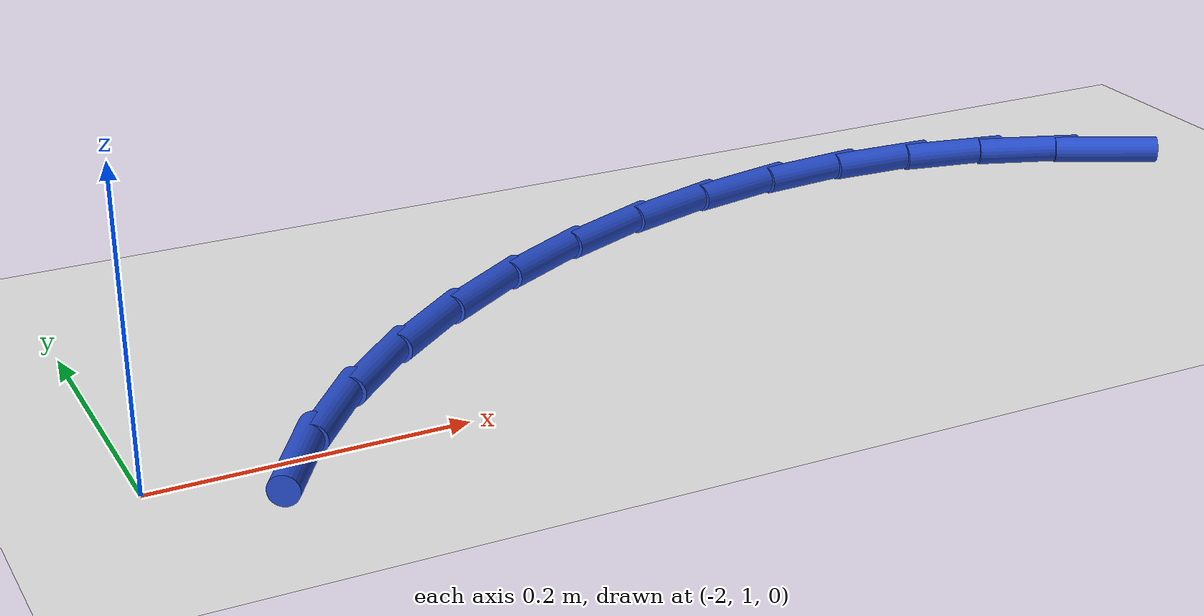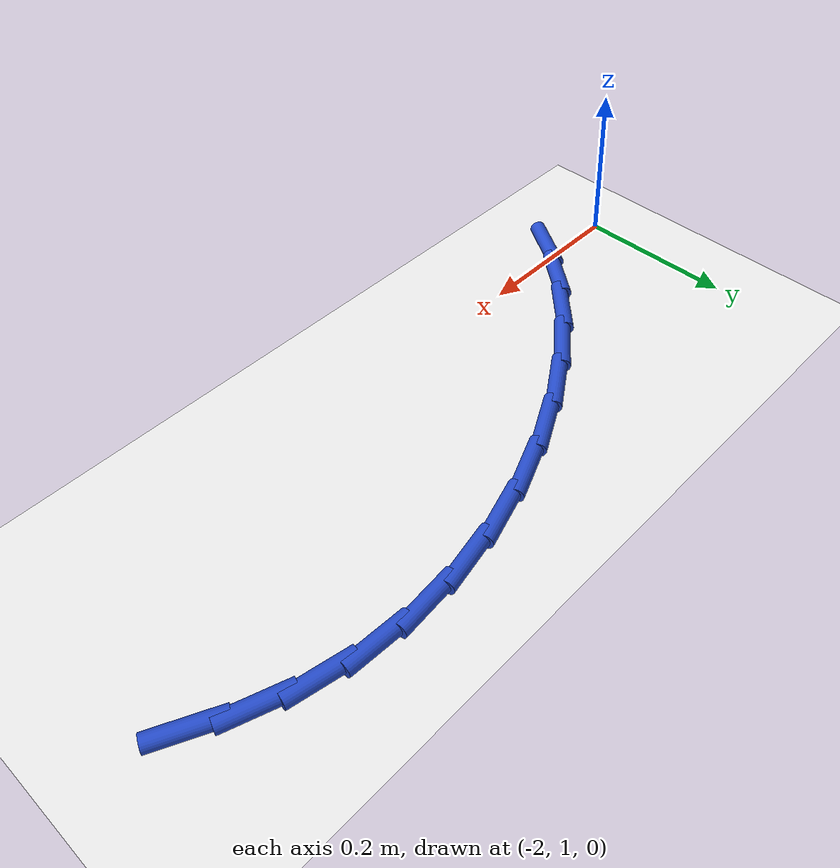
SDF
<sdf version="1.6">
 <world name="default">
  <model name="ground_plane">
   <static>1</static>
   <link name="link">
    <collision name="collision">
     <geometry><plane><normal>0 0 1</normal><size>100 100</size></plane></geometry>
     <surface><friction><ode><mu>100</mu><mu2>50</mu2></ode></friction></surface>
    </collision>
    <visual name="visual">
     <cast_shadows>0</cast_shadows>
     <geometry><plane><normal>0 0 1</normal><size>100 100</size></plane></geometry>
     <material>
      <script><uri>file://media/materials/scripts/gazebo.material</uri><name>Gazebo/WhiteGlow</name></script>
     </material>
    </visual>
   </link>
  </model>
  <model name="line">
   <link name="link_28">
    <pose>-1.1749943977846955 1.1941002527146445 0.01 0 1.57 -0.47391740135177374</pose>
    <collision name="collision">
     <geometry><cylinder><radius>0.01</radius><length>0.08</length></cylinder></geometry>
    </collision>
    <visual name="visual">
     <material>
      <script><name>Gazebo/Blue</name><uri>file://media/materials/scripts/gazebo.material</uri></script>
     </material>
     <geometry><cylinder><radius>0.01</radius><length>0.08</length></cylinder></geometry>
    </visual>
   </link>
   <link name="link_29">
    <pose>-1.229489667696943 1.2220510921576138 0.01 0 1.57 -0.3549428216838616</pose>
    <collision name="collision">
     <geometry><cylinder><radius>0.01</radius><length>0.08</length></cylinder></geometry>
    </collision>
    <visual name="visual">
     <material>
      <script><name>Gazebo/Blue</name><uri>file://media/materials/scripts/gazebo.material</uri></script>
     </material>
     <geometry><cylinder><radius>0.01</radius><length>0.08</length></cylinder></geometry>
    </visual>
   </link>
   <link name="link_30">
    <pose>-1.2861384052379323 1.243047385751963 0.01 0 1.57 -0.20665366411653513</pose>
    <collision name="collision">
     <geometry><cylinder><radius>0.01</radius><length>0.08</length></cylinder></geometry>
    </collision>
    <visual name="visual">
     <material>
      <script><name>Gazebo/Blue</name><uri>file://media/materials/scripts/gazebo.material</uri></script>
     </material>
     <geometry><cylinder><radius>0.01</radius><length>0.08</length></cylinder></geometry>
    </visual>
   </link>
   <link name="link_31">
    <pose>-1.3455772768717238 1.2555085410669022 0.01 0 1.57 -0.054585926908039095</pose>
    <collision name="collision">
     <geometry><cylinder><radius>0.01</radius><length>0.08</length></cylinder></geometry>
    </collision>
    <visual name="visual">
     <material>
      <script><name>Gazebo/Blue</name><uri>file://media/materials/scripts/gazebo.material</uri></script>
     </material>
     <geometry><cylinder><radius>0.01</radius><length>0.08</length></cylinder></geometry>
    </visual>
   </link>
   <link name="link_32">
    <pose>-1.4076438362745505 1.2588998707062404 0.01 0 1.57 0.07978417648909848</pose>
    <collision name="collision">
     <geometry><cylinder><radius>0.01</radius><length>0.08</length></cylinder></geometry>
    </collision>
    <visual name="visual">
     <material>
      <script><name>Gazebo/Blue</name><uri>file://media/materials/scripts/gazebo.material</uri></script>
     </material>
     <geometry><cylinder><radius>0.01</radius><length>0.08</length></cylinder></geometry>
    </visual>
   </link>
   <link name="link_33">
    <pose>-1.4713182585678255 1.2538088524558468 0.01 0 1.57 0.1986923184137767</pose>
    <collision name="collision">
     <geometry><cylinder><radius>0.01</radius><length>0.08</length></cylinder></geometry>
    </collision>
    <visual name="visual">
     <material>
      <script><name>Gazebo/Blue</name><uri>file://media/materials/scripts/gazebo.material</uri></script>
     </material>
     <geometry><cylinder><radius>0.01</radius><length>0.08</length></cylinder></geometry>
    </visual>
   </link>
   <link name="link_34">
    <pose>-1.5355385443969443 1.240878163439495 0.01 0 1.57 0.3060299221593851</pose>
    <collision name="collision">
     <geometry><cylinder><radius>0.01</radius><length>0.08</length></cylinder></geometry>
    </collision>
    <visual name="visual">
     <material>
      <script><name>Gazebo/Blue</name><uri>file://media/materials/scripts/gazebo.material</uri></script>
     </material>
     <geometry><cylinder><radius>0.01</radius><length>0.08</length></cylinder></geometry>
    </visual>
   </link>
   <link name="link_35">
    <pose>-1.599242694407301 1.2207504807809593 0.01 0 1.57 0.40566072790730456</pose>
    <collision name="collision">
     <geometry><cylinder><radius>0.01</radius><length>0.08</length></cylinder></geometry>
    </collision>
    <visual name="visual">
     <material>
      <script><name>Gazebo/Blue</name><uri>file://media/materials/scripts/gazebo.material</uri></script>
     </material>
     <geometry><cylinder><radius>0.01</radius><length>0.08</length></cylinder></geometry>
    </visual>
   </link>
   <link name="link_36">
    <pose>-1.6613687092442915 1.1940684816040137 0.01 0 1.57 0.5012466253309817</pose>
    <collision name="collision">
     <geometry><cylinder><radius>0.01</radius><length>0.08</length></cylinder></geometry>
    </collision>
    <visual name="visual">
     <material>
      <script><name>Gazebo/Blue</name><uri>file://media/materials/scripts/gazebo.material</uri></script>
     </material>
     <geometry><cylinder><radius>0.01</radius><length>0.08</length></cylinder></geometry>
    </visual>
   </link>
   <link name="link_37">
    <pose>-1.72085458955331 1.1614748430324324 0.01 0 1.57 0.596313829216323</pose>
    <collision name="collision">
     <geometry><cylinder><radius>0.01</radius><length>0.08</length></cylinder></geometry>
    </collision>
    <visual name="visual">
     <material>
      <script><name>Gazebo/Blue</name><uri>file://media/materials/scripts/gazebo.material</uri></script>
     </material>
     <geometry><cylinder><radius>0.01</radius><length>0.08</length></cylinder></geometry>
    </visual>
   </link>
   <link name="link_38">
    <pose>-1.7766383359797515 1.123612242189989 0.01 0 1.57 0.6944205707556714</pose>
    <collision name="collision">
     <geometry><cylinder><radius>0.01</radius><length>0.08</length></cylinder></geometry>
    </collision>
    <visual name="visual">
     <material>
      <script><name>Gazebo/Blue</name><uri>file://media/materials/scripts/gazebo.material</uri></script>
     </material>
     <geometry><cylinder><radius>0.01</radius><length>0.08</length></cylinder></geometry>
    </visual>
   </link>
   <link name="link_39">
    <pose>-1.8276579491690113 1.0811233562004579 0.01 0 1.57 0.7993501864429985</pose>
    <collision name="collision">
     <geometry><cylinder><radius>0.01</radius><length>0.08</length></cylinder></geometry>
    </collision>
    <visual name="visual">
     <material>
      <script><name>Gazebo/Blue</name><uri>file://media/materials/scripts/gazebo.material</uri></script>
     </material>
     <geometry><cylinder><radius>0.01</radius><length>0.08</length></cylinder></geometry>
    </visual>
   </link>
   <link name="link_40">
    <pose>-1.8728514354450059 1.0346508610478273 0.01 0 1.57 0.9119731440875543</pose>
    <collision name="collision">
     <geometry><cylinder><radius>0.01</radius><length>0.08</length></cylinder></geometry>
    </collision>
    <visual name="visual">
     <material>
      <script><name>Gazebo/Blue</name><uri>file://media/materials/scripts/gazebo.material</uri></script>
     </material>
     <geometry><cylinder><radius>0.01</radius><length>0.08</length></cylinder></geometry>
    </visual>
   </link>
   <link name="link_41">
    <pose>-1.911466101948968 0.9847753502168418 0.01 0 1.57 1.0211521311141885</pose>
    <collision name="collision">
     <geometry><cylinder><radius>0.01</radius><length>0.08</length></cylinder></geometry>
    </collision>
    <visual name="visual">
     <material>
      <script><name>Gazebo/Blue</name><uri>file://media/materials/scripts/gazebo.material</uri></script>
     </material>
     <geometry><cylinder><radius>0.01</radius><length>0.08</length></cylinder></geometry>
    </visual>
   </link>
  </model>
 </world>
</sdf>
